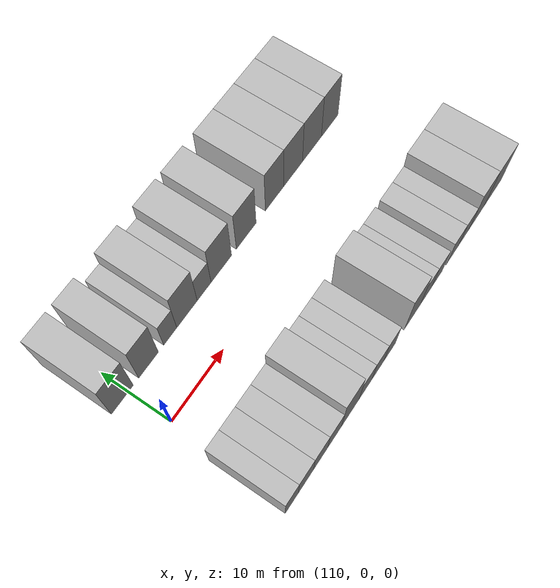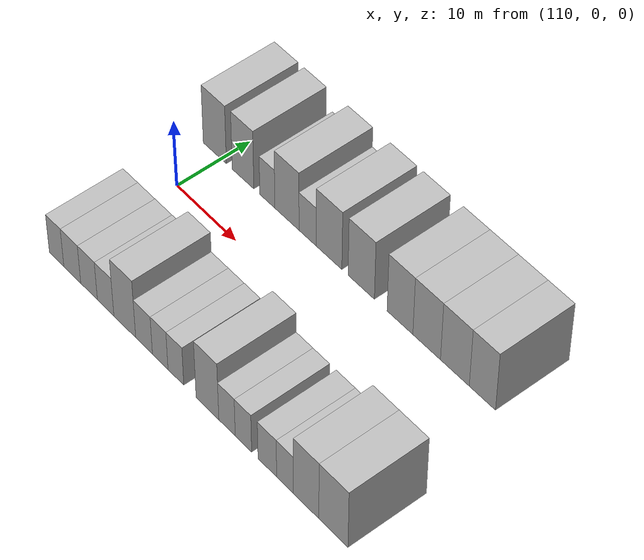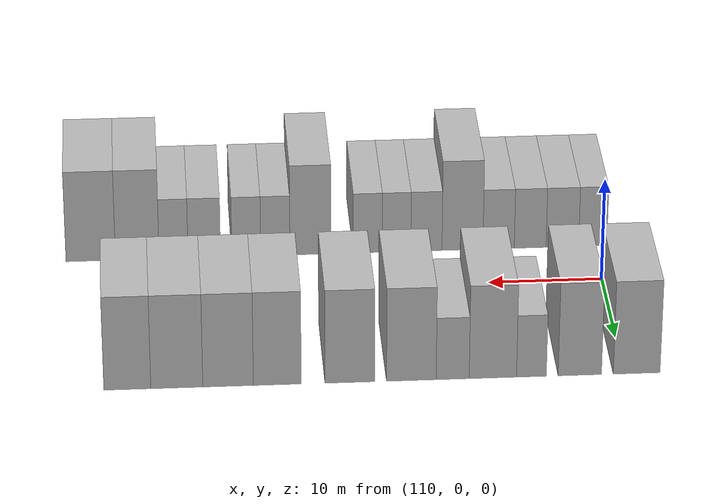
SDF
<sdf version="1.6">
 <world name="default">
  <model name="building_26">
   <static>1</static>
   <pose>108.9048 11.0000 0 0.000000 0.000000 1.570796</pose>
   <link name="link">
    <pose>0 0 4.50 0 0 0</pose>
    <collision name="collision"><geometry><box><size>10.0000 3.9780 9.0000</size></box></geometry></collision>
    <visual name="visual">
     <cast_shadows>0</cast_shadows>
     <geometry><box><size>10.0000 3.9780 9.0000</size></box></geometry>
     <material>
      <script>
       <uri>model://HANNAS_wall/materials/scripts</uri>
       <uri>model://HANNAS_wall/materials/textures</uri>
       <name>vrc/HANNAS_wall</name>
      </script>
     </material>
    </visual>
   </link>
  </model>
  <model name="building_27">
   <static>1</static>
   <pose>113.7349 11.0000 0 0.000000 0.000000 1.570796</pose>
   <link name="link">
    <pose>0 0 4.50 0 0 0</pose>
    <collision name="collision"><geometry><box><size>10.0000 3.6821 9.0000</size></box></geometry></collision>
    <visual name="visual">
     <cast_shadows>0</cast_shadows>
     <geometry><box><size>10.0000 3.6821 9.0000</size></box></geometry>
     <material>
      <script>
       <uri>model://HANNAS_wall/materials/scripts</uri>
       <uri>model://HANNAS_wall/materials/textures</uri>
       <name>vrc/HANNAS_wall</name>
      </script>
     </material>
    </visual>
   </link>
  </model>
  <model name="building_28">
   <static>1</static>
   <pose>117.8396 11.0000 0 0.000000 0.000000 1.570796</pose>
   <link name="link">
    <pose>0 0 3.00 0 0 0</pose>
    <collision name="collision"><geometry><box><size>10.0000 2.5272 6.0000</size></box></geometry></collision>
    <visual name="visual">
     <cast_shadows>0</cast_shadows>
     <geometry><box><size>10.0000 2.5272 6.0000</size></box></geometry>
     <material>
      <script>
       <uri>model://HANNAS_wall/materials/scripts</uri>
       <uri>model://HANNAS_wall/materials/textures</uri>
       <name>vrc/HANNAS_wall</name>
      </script>
     </material>
    </visual>
   </link>
  </model>
  <model name="building_29">
   <static>1</static>
   <pose>121.1098 11.0000 0 0.000000 0.000000 1.570796</pose>
   <link name="link">
    <pose>0 0 4.50 0 0 0</pose>
    <collision name="collision"><geometry><box><size>10.0000 4.0132 9.0000</size></box></geometry></collision>
    <visual name="visual">
     <cast_shadows>0</cast_shadows>
     <geometry><box><size>10.0000 4.0132 9.0000</size></box></geometry>
     <material>
      <script>
       <uri>model://HANNAS_wall/materials/scripts</uri>
       <uri>model://HANNAS_wall/materials/textures</uri>
       <name>vrc/HANNAS_wall</name>
      </script>
     </material>
    </visual>
   </link>
  </model>
  <model name="building_30">
   <static>1</static>
   <pose>124.5116 11.0000 0 0.000000 0.000000 1.570796</pose>
   <link name="link">
    <pose>0 0 3.00 0 0 0</pose>
    <collision name="collision"><geometry><box><size>10.0000 2.7904 6.0000</size></box></geometry></collision>
    <visual name="visual">
     <cast_shadows>0</cast_shadows>
     <geometry><box><size>10.0000 2.7904 6.0000</size></box></geometry>
     <material>
      <script>
       <uri>model://HANNAS_wall/materials/scripts</uri>
       <uri>model://HANNAS_wall/materials/textures</uri>
       <name>vrc/HANNAS_wall</name>
      </script>
     </material>
    </visual>
   </link>
  </model>
  <model name="building_31">
   <static>1</static>
   <pose>128.0067 11.0000 0 0.000000 0.000000 1.570796</pose>
   <link name="link">
    <pose>0 0 4.50 0 0 0</pose>
    <collision name="collision"><geometry><box><size>10.0000 4.1998 9.0000</size></box></geometry></collision>
    <visual name="visual">
     <cast_shadows>0</cast_shadows>
     <geometry><box><size>10.0000 4.1998 9.0000</size></box></geometry>
     <material>
      <script>
       <uri>model://HANNAS_wall/materials/scripts</uri>
       <uri>model://HANNAS_wall/materials/textures</uri>
       <name>vrc/HANNAS_wall</name>
      </script>
     </material>
    </visual>
   </link>
  </model>
  <model name="building_32">
   <static>1</static>
   <pose>133.2052 11.0000 0 0.000000 0.000000 1.570796</pose>
   <link name="link">
    <pose>0 0 4.50 0 0 0</pose>
    <collision name="collision"><geometry><box><size>10.0000 4.1973 9.0000</size></box></geometry></collision>
    <visual name="visual">
     <cast_shadows>0</cast_shadows>
     <geometry><box><size>10.0000 4.1973 9.0000</size></box></geometry>
     <material>
      <script>
       <uri>model://HANNAS_wall/materials/scripts</uri>
       <uri>model://HANNAS_wall/materials/textures</uri>
       <name>vrc/HANNAS_wall</name>
      </script>
     </material>
    </visual>
   </link>
  </model>
  <model name="building_33">
   <static>1</static>
   <pose>139.3201 11.0000 0 0.000000 0.000000 1.570796</pose>
   <link name="link">
    <pose>0 0 4.50 0 0 0</pose>
    <collision name="collision"><geometry><box><size>10.0000 4.0323 9.0000</size></box></geometry></collision>
    <visual name="visual">
     <cast_shadows>0</cast_shadows>
     <geometry><box><size>10.0000 4.0323 9.0000</size></box></geometry>
     <material>
      <script>
       <uri>model://HANNAS_wall/materials/scripts</uri>
       <uri>model://HANNAS_wall/materials/textures</uri>
       <name>vrc/HANNAS_wall</name>
      </script>
     </material>
    </visual>
   </link>
  </model>
  <model name="building_34">
   <static>1</static>
   <pose>143.4640 11.0000 0 0.000000 0.000000 1.570796</pose>
   <link name="link">
    <pose>0 0 4.50 0 0 0</pose>
    <collision name="collision"><geometry><box><size>10.0000 4.2556 9.0000</size></box></geometry></collision>
    <visual name="visual">
     <cast_shadows>0</cast_shadows>
     <geometry><box><size>10.0000 4.2556 9.0000</size></box></geometry>
     <material>
      <script>
       <uri>model://HANNAS_wall/materials/scripts</uri>
       <uri>model://HANNAS_wall/materials/textures</uri>
       <name>vrc/HANNAS_wall</name>
      </script>
     </material>
    </visual>
   </link>
  </model>
  <model name="building_35">
   <static>1</static>
   <pose>147.7761 11.0000 0 0.000000 0.000000 1.570796</pose>
   <link name="link">
    <pose>0 0 4.50 0 0 0</pose>
    <collision name="collision"><geometry><box><size>10.0000 4.3686 9.0000</size></box></geometry></collision>
    <visual name="visual">
     <cast_shadows>0</cast_shadows>
     <geometry><box><size>10.0000 4.3686 9.0000</size></box></geometry>
     <material>
      <script>
       <uri>model://HANNAS_wall/materials/scripts</uri>
       <uri>model://HANNAS_wall/materials/textures</uri>
       <name>vrc/HANNAS_wall</name>
      </script>
     </material>
    </visual>
   </link>
  </model>
  <model name="building_36">
   <static>1</static>
   <pose>151.9276 11.0000 0 0.000000 0.000000 1.570796</pose>
   <link name="link">
    <pose>0 0 4.50 0 0 0</pose>
    <collision name="collision"><geometry><box><size>10.0000 3.9345 9.0000</size></box></geometry></collision>
    <visual name="visual">
     <cast_shadows>0</cast_shadows>
     <geometry><box><size>10.0000 3.9345 9.0000</size></box></geometry>
     <material>
      <script>
       <uri>model://HANNAS_wall/materials/scripts</uri>
       <uri>model://HANNAS_wall/materials/textures</uri>
       <name>vrc/HANNAS_wall</name>
      </script>
     </material>
    </visual>
   </link>
  </model>
  <model name="building_76">
   <static>1</static>
   <pose>110.1139 -11.0000 0 0.000000 0.000000 1.570796</pose>
   <link name="link">
    <pose>0 0 3.00 0 0 0</pose>
    <collision name="collision"><geometry><box><size>10.0000 2.5316 6.0000</size></box></geometry></collision>
    <visual name="visual">
     <cast_shadows>0</cast_shadows>
     <geometry><box><size>10.0000 2.5316 6.0000</size></box></geometry>
     <material>
      <script>
       <uri>model://HANNAS_wall/materials/scripts</uri>
       <uri>model://HANNAS_wall/materials/textures</uri>
       <name>vrc/HANNAS_wall</name>
      </script>
     </material>
    </visual>
   </link>
  </model>
  <model name="building_77">
   <static>1</static>
   <pose>112.8447 -11.0000 0 0.000000 0.000000 1.570796</pose>
   <link name="link">
    <pose>0 0 3.00 0 0 0</pose>
    <collision name="collision"><geometry><box><size>10.0000 2.9300 6.0000</size></box></geometry></collision>
    <visual name="visual">
     <cast_shadows>0</cast_shadows>
     <geometry><box><size>10.0000 2.9300 6.0000</size></box></geometry>
     <material>
      <script>
       <uri>model://HANNAS_wall/materials/scripts</uri>
       <uri>model://HANNAS_wall/materials/textures</uri>
       <name>vrc/HANNAS_wall</name>
      </script>
     </material>
    </visual>
   </link>
  </model>
  <model name="building_78">
   <static>1</static>
   <pose>115.7404 -11.0000 0 0.000000 0.000000 1.570796</pose>
   <link name="link">
    <pose>0 0 3.00 0 0 0</pose>
    <collision name="collision"><geometry><box><size>10.0000 2.8615 6.0000</size></box></geometry></collision>
    <visual name="visual">
     <cast_shadows>0</cast_shadows>
     <geometry><box><size>10.0000 2.8615 6.0000</size></box></geometry>
     <material>
      <script>
       <uri>model://HANNAS_wall/materials/scripts</uri>
       <uri>model://HANNAS_wall/materials/textures</uri>
       <name>vrc/HANNAS_wall</name>
      </script>
     </material>
    </visual>
   </link>
  </model>
  <model name="building_79">
   <static>1</static>
   <pose>118.5729 -11.0000 0 0.000000 0.000000 1.570796</pose>
   <link name="link">
    <pose>0 0 3.00 0 0 0</pose>
    <collision name="collision"><geometry><box><size>10.0000 2.8034 6.0000</size></box></geometry></collision>
    <visual name="visual">
     <cast_shadows>0</cast_shadows>
     <geometry><box><size>10.0000 2.8034 6.0000</size></box></geometry>
     <material>
      <script>
       <uri>model://HANNAS_wall/materials/scripts</uri>
       <uri>model://HANNAS_wall/materials/textures</uri>
       <name>vrc/HANNAS_wall</name>
      </script>
     </material>
    </visual>
   </link>
  </model>
  <model name="building_80">
   <static>1</static>
   <pose>121.8096 -11.0000 0 0.000000 0.000000 1.570796</pose>
   <link name="link">
    <pose>0 0 4.50 0 0 0</pose>
    <collision name="collision"><geometry><box><size>10.0000 3.6700 9.0000</size></box></geometry></collision>
    <visual name="visual">
     <cast_shadows>0</cast_shadows>
     <geometry><box><size>10.0000 3.6700 9.0000</size></box></geometry>
     <material>
      <script>
       <uri>model://HANNAS_wall/materials/scripts</uri>
       <uri>model://HANNAS_wall/materials/textures</uri>
       <name>vrc/HANNAS_wall</name>
      </script>
     </material>
    </visual>
   </link>
  </model>
  <model name="building_81">
   <static>1</static>
   <pose>125.0397 -11.0000 0 0.000000 0.000000 1.570796</pose>
   <link name="link">
    <pose>0 0 3.00 0 0 0</pose>
    <collision name="collision"><geometry><box><size>10.0000 2.7900 6.0000</size></box></geometry></collision>
    <visual name="visual">
     <cast_shadows>0</cast_shadows>
     <geometry><box><size>10.0000 2.7900 6.0000</size></box></geometry>
     <material>
      <script>
       <uri>model://HANNAS_wall/materials/scripts</uri>
       <uri>model://HANNAS_wall/materials/textures</uri>
       <name>vrc/HANNAS_wall</name>
      </script>
     </material>
    </visual>
   </link>
  </model>
  <model name="building_82">
   <static>1</static>
   <pose>127.7162 -11.0000 0 0.000000 0.000000 1.570796</pose>
   <link name="link">
    <pose>0 0 3.00 0 0 0</pose>
    <collision name="collision"><geometry><box><size>10.0000 2.5630 6.0000</size></box></geometry></collision>
    <visual name="visual">
     <cast_shadows>0</cast_shadows>
     <geometry><box><size>10.0000 2.5630 6.0000</size></box></geometry>
     <material>
      <script>
       <uri>model://HANNAS_wall/materials/scripts</uri>
       <uri>model://HANNAS_wall/materials/textures</uri>
       <name>vrc/HANNAS_wall</name>
      </script>
     </material>
    </visual>
   </link>
  </model>
  <model name="building_83">
   <static>1</static>
   <pose>130.2859 -11.0000 0 0.000000 0.000000 1.570796</pose>
   <link name="link">
    <pose>0 0 3.00 0 0 0</pose>
    <collision name="collision"><geometry><box><size>10.0000 2.5766 6.0000</size></box></geometry></collision>
    <visual name="visual">
     <cast_shadows>0</cast_shadows>
     <geometry><box><size>10.0000 2.5766 6.0000</size></box></geometry>
     <material>
      <script>
       <uri>model://HANNAS_wall/materials/scripts</uri>
       <uri>model://HANNAS_wall/materials/textures</uri>
       <name>vrc/HANNAS_wall</name>
      </script>
     </material>
    </visual>
   </link>
  </model>
  <model name="building_84">
   <static>1</static>
   <pose>135.4018 -11.0000 0 0.000000 0.000000 1.570796</pose>
   <link name="link">
    <pose>0 0 4.50 0 0 0</pose>
    <collision name="collision"><geometry><box><size>10.0000 3.6552 9.0000</size></box></geometry></collision>
    <visual name="visual">
     <cast_shadows>0</cast_shadows>
     <geometry><box><size>10.0000 3.6552 9.0000</size></box></geometry>
     <material>
      <script>
       <uri>model://HANNAS_wall/materials/scripts</uri>
       <uri>model://HANNAS_wall/materials/textures</uri>
       <name>vrc/HANNAS_wall</name>
      </script>
     </material>
    </visual>
   </link>
  </model>
  <model name="building_85">
   <static>1</static>
   <pose>138.5337 -11.0000 0 0.000000 0.000000 1.570796</pose>
   <link name="link">
    <pose>0 0 3.00 0 0 0</pose>
    <collision name="collision"><geometry><box><size>10.0000 2.6086 6.0000</size></box></geometry></collision>
    <visual name="visual">
     <cast_shadows>0</cast_shadows>
     <geometry><box><size>10.0000 2.6086 6.0000</size></box></geometry>
     <material>
      <script>
       <uri>model://HANNAS_wall/materials/scripts</uri>
       <uri>model://HANNAS_wall/materials/textures</uri>
       <name>vrc/HANNAS_wall</name>
      </script>
     </material>
    </visual>
   </link>
  </model>
  <model name="building_86">
   <static>1</static>
   <pose>141.1270 -11.0000 0 0.000000 0.000000 1.570796</pose>
   <link name="link">
    <pose>0 0 3.00 0 0 0</pose>
    <collision name="collision"><geometry><box><size>10.0000 2.5780 6.0000</size></box></geometry></collision>
    <visual name="visual">
     <cast_shadows>0</cast_shadows>
     <geometry><box><size>10.0000 2.5780 6.0000</size></box></geometry>
     <material>
      <script>
       <uri>model://HANNAS_wall/materials/scripts</uri>
       <uri>model://HANNAS_wall/materials/textures</uri>
       <name>vrc/HANNAS_wall</name>
      </script>
     </material>
    </visual>
   </link>
  </model>
  <model name="building_87">
   <static>1</static>
   <pose>144.8616 -11.0000 0 0.000000 0.000000 1.570796</pose>
   <link name="link">
    <pose>0 0 3.00 0 0 0</pose>
    <collision name="collision"><geometry><box><size>10.0000 2.8910 6.0000</size></box></geometry></collision>
    <visual name="visual">
     <cast_shadows>0</cast_shadows>
     <geometry><box><size>10.0000 2.8910 6.0000</size></box></geometry>
     <material>
      <script>
       <uri>model://HANNAS_wall/materials/scripts</uri>
       <uri>model://HANNAS_wall/materials/textures</uri>
       <name>vrc/HANNAS_wall</name>
      </script>
     </material>
    </visual>
   </link>
  </model>
  <model name="building_88">
   <static>1</static>
   <pose>147.5941 -11.0000 0 0.000000 0.000000 1.570796</pose>
   <link name="link">
    <pose>0 0 3.00 0 0 0</pose>
    <collision name="collision"><geometry><box><size>10.0000 2.5740 6.0000</size></box></geometry></collision>
    <visual name="visual">
     <cast_shadows>0</cast_shadows>
     <geometry><box><size>10.0000 2.5740 6.0000</size></box></geometry>
     <material>
      <script>
       <uri>model://HANNAS_wall/materials/scripts</uri>
       <uri>model://HANNAS_wall/materials/textures</uri>
       <name>vrc/HANNAS_wall</name>
      </script>
     </material>
    </visual>
   </link>
  </model>
  <model name="building_89">
   <static>1</static>
   <pose>150.8193 -11.0000 0 0.000000 0.000000 1.570796</pose>
   <link name="link">
    <pose>0 0 4.50 0 0 0</pose>
    <collision name="collision"><geometry><box><size>10.0000 3.8763 9.0000</size></box></geometry></collision>
    <visual name="visual">
     <cast_shadows>0</cast_shadows>
     <geometry><box><size>10.0000 3.8763 9.0000</size></box></geometry>
     <material>
      <script>
       <uri>model://HANNAS_wall/materials/scripts</uri>
       <uri>model://HANNAS_wall/materials/textures</uri>
       <name>vrc/HANNAS_wall</name>
      </script>
     </material>
    </visual>
   </link>
  </model>
  <model name="building_90">
   <static>1</static>
   <pose>154.9484 -11.0000 0 0.000000 0.000000 1.570796</pose>
   <link name="link">
    <pose>0 0 4.50 0 0 0</pose>
    <collision name="collision"><geometry><box><size>10.0000 4.3820 9.0000</size></box></geometry></collision>
    <visual name="visual">
     <cast_shadows>0</cast_shadows>
     <geometry><box><size>10.0000 4.3820 9.0000</size></box></geometry>
     <material>
      <script>
       <uri>model://HANNAS_wall/materials/scripts</uri>
       <uri>model://HANNAS_wall/materials/textures</uri>
       <name>vrc/HANNAS_wall</name>
      </script>
     </material>
    </visual>
   </link>
  </model>
 </world>
</sdf>
